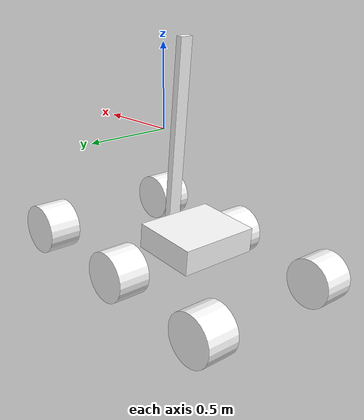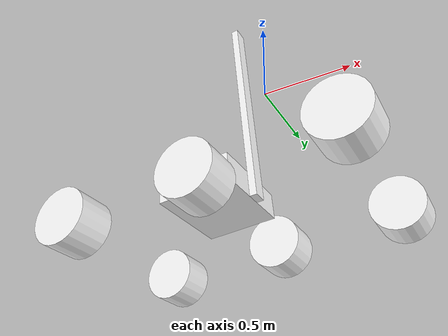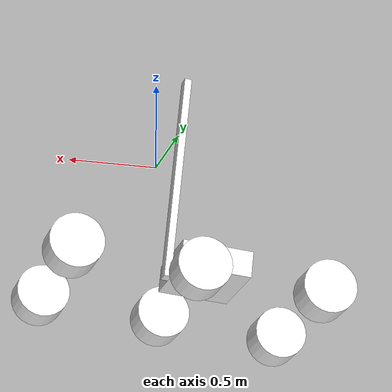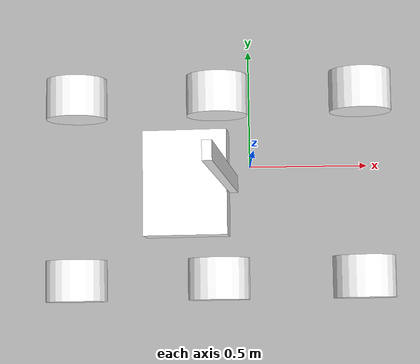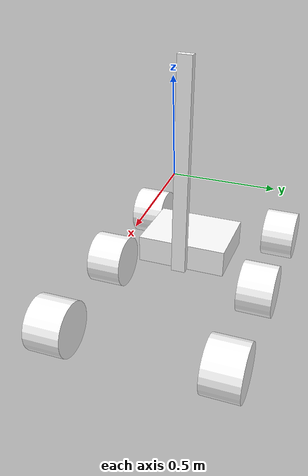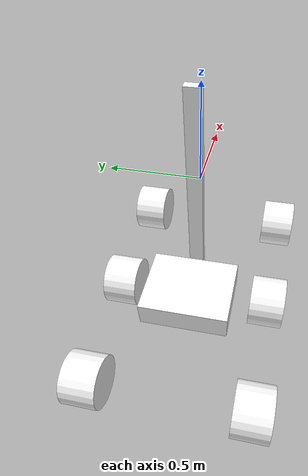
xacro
<?xml version="1.0" ?>
<robot name="rover" xmlns:xacro="http://ros.org/wiki/xacro">

  <!-- Created by Nelson Durrant, Mar 2025 -->

  <!-- Rover constants -->
  <xacro:property name="base_width" value="0.5"/>
  <xacro:property name="base_length" value="0.4"/>
  <xacro:property name="base_height" value="0.15"/>

  <!-- How far back the rover carriage is compared to the center of the middle wheel -->
  <xacro:property name="base_offset_x" value="0.135"/>

  <xacro:property name="wheel_radius" value="0.15"/>
  <xacro:property name="wheel_width" value="0.2"/>

  <!-- How far the center of the front wheel is from the center of the middle wheel -->
  <xacro:property name="wheel_xoff" value="0.7"/>

  <!-- How far the center of the wheel is from the outside of the base -->
  <xacro:property name="wheel_ygap" value="0.1"/>

  <!-- How far down the center of the wheels are from the base center -->
  <xacro:property name="wheel_zoff" value="0.15"/>

  <xacro:property name="pole_length" value="0.04"/>
  <xacro:property name="pole_width" value="0.08"/>
  <xacro:property name="pole_height" value="1.2"/>

  <!-- Gazebo simulation plugins -->
  <xacro:include filename="$(find rover_description)/urdf/rover.gazebo.xacro" />

  <!-- Rover base -->
  <link name="base_link">
    <visual>
      <geometry>
        <box size="${base_length} ${base_width} ${base_height}"/>
      </geometry>
      <material name="White">
        <color rgba="1 1 1 1"/>
      </material>
    </visual>
    <collision>
        <geometry>
            <box size="${base_length} ${base_width} ${base_height}"/>
        </geometry>
    </collision>
    <inertial>
        <mass value="10"/>
        <inertia ixx="1.0" ixy="0.0" ixz="0.0" iyy="1.0" iyz="0.0" izz="1.0"/>
    </inertial>
  </link>

  <!-- Rocker assembly function -->
  <xacro:macro name="rocker_assembly" params="prefix y_reflect">
    <link name="${prefix}_rocker_link">
      <inertial>
        <mass value="2"/>
        <origin xyz="0 0 0" rpy="0 0 0"/>
        <inertia ixx="0.1" ixy="0" ixz="0" iyy="0.1" iyz="0" izz="0.1"/>
      </inertial>
    </link>

    <joint name="${prefix}_rocker_joint" type="revolute">
      <parent link="base_link"/>
      <child link="${prefix}_rocker_link"/>
      <origin xyz="${base_offset_x} ${y_reflect*(base_width/2+wheel_ygap+wheel_width/2)} ${-wheel_zoff}" rpy="0 0 0"/>
      <axis xyz="0 1 0"/>
      <limit lower="-${pi/6}" upper="${pi/36}" effort="100" velocity="1.0"/>
      <dynamics damping="0.5"/>
    </joint>
  </xacro:macro>

  <!-- Rocker assemblies -->
  <xacro:rocker_assembly prefix="left" y_reflect="1"/>
  <xacro:rocker_assembly prefix="right" y_reflect="-1"/>

  <!-- Rover wheels function -->
  <xacro:macro name="wheel" params="prefix x_reflect y_reflect wheel_pos y_reflect_prefix">
    <link name="${prefix}_link">
      <visual>
        <origin xyz="0 0 0" rpy="${pi/2} 0 0"/>
        <geometry>
          <cylinder radius="${wheel_radius}" length="${wheel_width}"/>
        </geometry>
        <material name="White">
          <color rgba="1 1 1 1"/>
        </material>
      </visual>
      <collision>
        <origin xyz="0 0 0" rpy="${pi/2} 0 0"/>
        <geometry>
            <cylinder radius="${wheel_radius}" length="${wheel_width}"/>
        </geometry>
      </collision>
      <inertial>
        <mass value="1"/>
        <inertia ixx="0.009" ixy="0.0" ixz="0.0" iyy="0.011" iyz="0.0" izz="0.009"/>
      </inertial>
    </link>

    <joint name="${prefix}_joint" type="continuous">
      <parent link="${y_reflect_prefix}_rocker_link"/>
      <child link="${prefix}_link"/>
      <origin xyz="${x_reflect*(wheel_xoff*(wheel_pos-1))} 0 0" rpy="0 0 0"/>      <axis xyz="0 1 0"/>
    </joint>
  </xacro:macro>

  <!-- Rover wheels -->
  <xacro:wheel prefix="wheel_left_middle"  x_reflect="-1" y_reflect="1" wheel_pos="1" y_reflect_prefix="left"/>
  <xacro:wheel prefix="wheel_right_middle" x_reflect="-1" y_reflect="-1" wheel_pos="1" y_reflect_prefix="right"/>

  <xacro:wheel prefix="wheel_left_front"   x_reflect="-1" y_reflect="1" wheel_pos="0" y_reflect_prefix="left"/>
  <xacro:wheel prefix="wheel_left_rear"    x_reflect="-1" y_reflect="1" wheel_pos="2" y_reflect_prefix="left"/>

  <xacro:wheel prefix="wheel_right_front"  x_reflect="-1" y_reflect="-1" wheel_pos="0" y_reflect_prefix="right"/>
  <xacro:wheel prefix="wheel_right_rear"   x_reflect="-1" y_reflect="-1" wheel_pos="2" y_reflect_prefix="right"/>

  <!-- Antenna pole -->
  <link name="pole_link">
    <visual>
      <geometry>
        <box size="${pole_length} ${pole_width} ${pole_height}"/>
      </geometry>
      <material name="White">
        <color rgba="1 1 1 1"/>
      </material>
    </visual>
    <collision>
        <geometry>
            <box size="${pole_length} ${pole_width} ${pole_height}"/>
        </geometry>
    </collision>
    <inertial>
        <mass value="1"/>
        <inertia ixx="1.0" ixy="0.0" ixz="0.0" iyy="1.0" iyz="0.0" izz="1.0"/>
    </inertial>
  </link>

  <joint name="pole_joint" type="fixed">
    <parent link="pole_link"/>
    <child link="base_link"/>
    <origin xyz="${-base_length/2-pole_length/2} 0 ${-pole_height/2+base_height/2}" rpy="0 0 0"/>
  </joint>

  <!-- GPS Sensor -->
  <joint name="gps_joint" type="fixed">
    <parent link="base_link"/>
    <child link="gps_link"/>
    <origin xyz="${-base_length/2} 0 ${base_height/2}" rpy="0 0 0"/>
  </joint>

  <link name="gps_link">
    <inertial>
        <mass value="0.1"/>
        <inertia ixx="0.1" ixy="0.0" ixz="0.0" iyy="0.1" iyz="0.0" izz="0.1"/>
    </inertial>
  </link>

  <!-- Intel Realsense Camera (used by the simulator) -->
  <joint name="intel_realsense_joint" type="fixed">
    <parent link="zed_camera_link"/>
    <child link="intel_realsense_link"/>
    <origin xyz="0 0 0" rpy="${-pi/2} 0 ${-pi/2}"/>
  </joint>

  <link name="intel_realsense_link">
    <inertial>
        <mass value="0.1"/>
        <inertia ixx="0.1" ixy="0.0" ixz="0.0" iyy="0.1" iyz="0.0" izz="0.1"/>
    </inertial>
  </link>

  <!-- ZED Camera -->
  <!-- The ZED manages its own internal TF tree -->
  <!-- https://www.stereolabs.com/docs/ros2/140_ros2-robot-integration -->
  <joint name="zed_camera_joint" type="fixed">
    <parent link="zed_camera_link"/>
    <child link="pole_link"/>
    <origin xyz="${-pole_length/2-0.1} 0 -0.05" rpy="0 -0.1 0"/>
  </joint>
  <!-- NOTE: As the top of the URDF tree, this can't have an intertial attribute -->
  <link name="zed_camera_link"/>

</robot>
